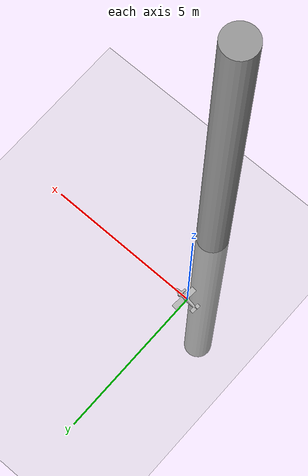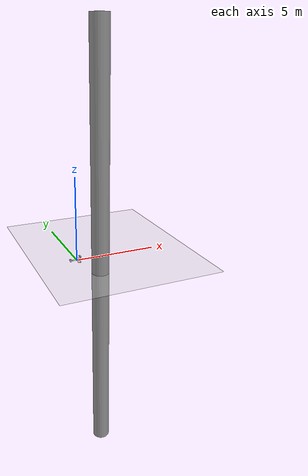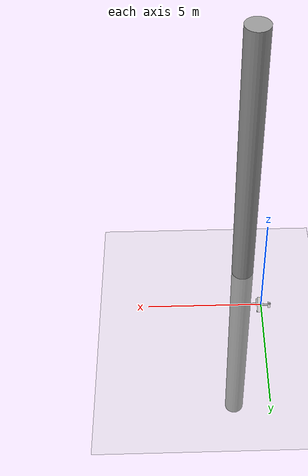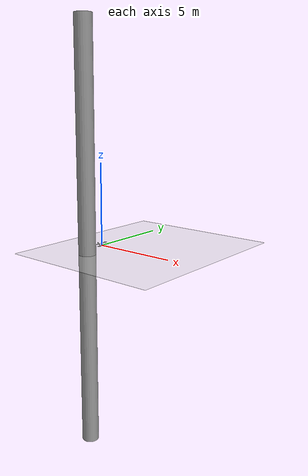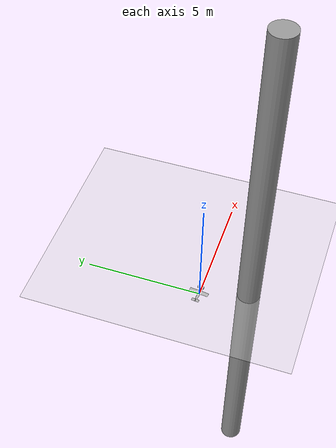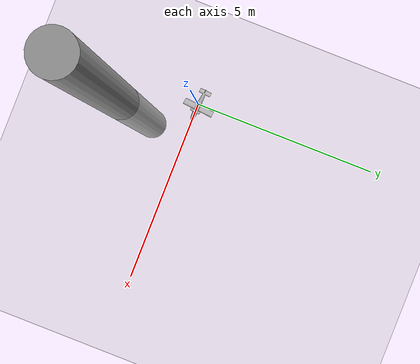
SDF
<sdf version="1.6">
 <world name="default">
  <model name="ground_plane">
   <static>1</static>
   <link name="link">
    <collision name="collision">
     <geometry><plane><normal>0 0 1</normal><size>100 100</size></plane></geometry>
     <surface>
      <contact><collide_bitmask>65535</collide_bitmask></contact>
      <friction><ode><mu>100</mu><mu2>50</mu2></ode></friction>
     </surface>
    </collision>
    <visual name="visual">
     <cast_shadows>0</cast_shadows>
     <geometry><plane><normal>0 0 1</normal><size>100 100</size></plane></geometry>
     <material>
      <script><uri>file://media/materials/scripts/gazebo.material</uri><name>Gazebo/Grey</name></script>
     </material>
    </visual>
   </link>
  </model>
  <light name="sun" type="directional">
   <pose>0 0 10 0 -0 0</pose>
   <diffuse>0.8 0.8 0.8 1</diffuse>
   <specular>0.2 0.2 0.2 1</specular>
   <attenuation>
    <range>1000</range>
    <constant>0.9</constant>
    <linear>0.01</linear>
    <quadratic>0.001</quadratic>
   </attenuation>
   <direction>-0.5 0.1 -0.9</direction>
  </light>
  <model name="forest"><static>1</static><link name="tree0"><pose>10 1 0 0 -0 1.83149</pose></link></model>
  <gravity>0 0 -9.8</gravity>
  <magnetic_field>6e-06 2.3e-05 -4.2e-05</magnetic_field>
  <atmosphere type="adiabatic"/>
  <physics name="default_physics" default="0" type="ode">
   <max_step_size>0.001</max_step_size>
   <real_time_factor>1</real_time_factor>
   <real_time_update_rate>1000</real_time_update_rate>
  </physics>
  <scene><ambient>0.4 0.4 0.4 1</ambient><background>0.7 0.7 0.7 1</background><shadows>1</shadows></scene>
  <spherical_coordinates>
   <surface_model>EARTH_WGS84</surface_model>
   <latitude_deg>0</latitude_deg>
   <longitude_deg>0</longitude_deg>
   <elevation>0</elevation>
   <heading_deg>0</heading_deg>
  </spherical_coordinates>
  <model name="plane_xacro">
   <link name="plane_xacro_default_link">
    <inertial>
     <mass>0.45</mass>
     <inertia>
      <ixx>0.003922</ixx>
      <ixy>0</ixy>
      <ixz>-4e-21</ixz>
      <iyy>0.01594</iyy>
      <iyz>0</iyz>
      <izz>0.01934</izz>
     </inertia>
    </inertial>
    <collision name="plane_xacro_default_link_collision">
     <geometry>
      <mesh><scale>1 1 1</scale><uri>/home/eitan/mcfoamy_gazebo/src/gazebo_example/meshes/plane.dae</uri></mesh>
     </geometry>
    </collision>
    <collision name="plane_xacro_default_link_fixed_joint_lump__kinect_collision_1">
     <pose>0.2 0 0.2 0 -0 0</pose>
     <geometry><box><size>0.073 0.276 0.072</size></box></geometry>
    </collision>
    <visual name="plane_xacro_default_link_visual">
     <geometry>
      <mesh><scale>1 1 1</scale><uri>/home/eitan/mcfoamy_gazebo/src/gazebo_example/meshes/plane.dae</uri></mesh>
     </geometry>
    </visual>
    <visual name="plane_xacro_default_link_fixed_joint_lump__kinect_visual_1">
     <pose>0.2 0 0.2 0 -0 0</pose>
     <geometry><box><size>0.073 0.276 0.072</size></box></geometry>
     <material><script><uri>__default__</uri><name>__default__</name></script></material>
    </visual>
    <sensor name="camera" type="depth">
     <update_rate>20</update_rate>
     <camera name="__default__">
      <horizontal_fov>1.0472</horizontal_fov>
      <image><width>640</width><height>480</height><format>R8G8B8</format></image>
      <clip><near>0.05</near><far>10</far></clip>
     </camera>
     <plugin name="camera_plugin" filename="libgazebo_ros_openni_kinect.so">
      <baseline>0.2</baseline>
      <alwaysOn>true</alwaysOn>
      <updateRate>0.0</updateRate>
      <cameraName>camera_ir</cameraName>
      <imageTopicName>/camera/depth/image_raw</imageTopicName>
      <cameraInfoTopicName>/camera/depth/camera_info</cameraInfoTopicName>
      <depthImageTopicName>/camera/depth/image_raw</depthImageTopicName>
      <depthImageInfoTopicName>/camera/depth/camera_info</depthImageInfoTopicName>
      <pointCloudTopicName>/plane_xacro_default/points</pointCloudTopicName>
      <frameName>camera_link</frameName>
      <pointCloudCutoff>0.05</pointCloudCutoff>
      <distortionK1>0</distortionK1>
      <distortionK2>0</distortionK2>
      <distortionK3>0</distortionK3>
      <distortionT1>0</distortionT1>
      <distortionT2>0</distortionT2>
      <CxPrime>0</CxPrime>
      <Cx>0</Cx>
      <Cy>0</Cy>
      <focalLength>0</focalLength>
      <hackBaseline>0</hackBaseline>
      <robotNamespace>/plane_xacro_default/</robotNamespace>
     </plugin>
     <pose>0.2 0 0.2 0 -0 0</pose>
    </sensor>
   </link>
   <static>0</static>
   <plugin name="gazebo_plane" filename="/home/eitan/gazebo_example/devel/lib/libgazebo_plane.so">
    <robotNamespace>plane_xacro_default</robotNamespace>
   </plugin>
   <pose>0.007067 0.020767 0.005713 2.1e-05 -0.000295 -0.09391</pose>
  </model>
  <model name="unit_cylinder">
   <link name="link">
    <inertial>
     <mass>1</mass>
     <inertia><ixx>0.145833</ixx><ixy>0</ixy><ixz>0</ixz><iyy>0.145833</iyy><iyz>0</iyz><izz>0.125</izz></inertia>
    </inertial>
    <visual name="visual">
     <geometry><cylinder><radius>0.5</radius><length>25</length></cylinder></geometry>
     <material>
      <script><name>Gazebo/Grey</name><uri>file://media/materials/scripts/gazebo.material</uri></script>
      <shader type="pixel"><normal_map>__default__</normal_map></shader>
      <ambient>0.3 0.3 0.3 1</ambient>
      <diffuse>0.7 0.7 0.7 1</diffuse>
      <specular>0.01 0.01 0.01 1</specular>
      <emissive>0 0 0 1</emissive>
     </material>
    </visual>
    <collision name="collision">
     <geometry><cylinder><radius>0.5</radius><length>1</length></cylinder></geometry>
     <surface>
      <friction>
       <ode><mu>1</mu><mu2>1</mu2><fdir1>0 0 0</fdir1><slip1>0</slip1><slip2>0</slip2></ode>
       <torsional>
        <coefficient>1</coefficient>
        <patch_radius>0</patch_radius>
        <surface_radius>0</surface_radius>
        <use_patch_radius>1</use_patch_radius>
        <ode><slip>0</slip></ode>
       </torsional>
      </friction>
      <bounce><restitution_coefficient>0</restitution_coefficient><threshold>1e+06</threshold></bounce>
      <contact>
       <collide_without_contact>0</collide_without_contact>
       <collide_without_contact_bitmask>1</collide_without_contact_bitmask>
       <collide_bitmask>1</collide_bitmask>
       <ode>
        <soft_cfm>0</soft_cfm>
        <soft_erp>0.2</soft_erp>
        <kp>1e+13</kp>
        <kd>1</kd>
        <max_vel>0.01</max_vel>
        <min_depth>0</min_depth>
       </ode>
       <bullet>
        <split_impulse>1</split_impulse>
        <split_impulse_penetration_threshold>-0.01</split_impulse_penetration_threshold>
        <soft_cfm>0</soft_cfm>
        <soft_erp>0.2</soft_erp>
        <kp>1e+13</kp>
        <kd>1</kd>
       </bullet>
      </contact>
     </surface>
    </collision>
   </link>
   <static>0</static>
   <pose>0.694871 -1.97709 0.499991 0 -0 0</pose>
  </model>
 </world>
</sdf>
